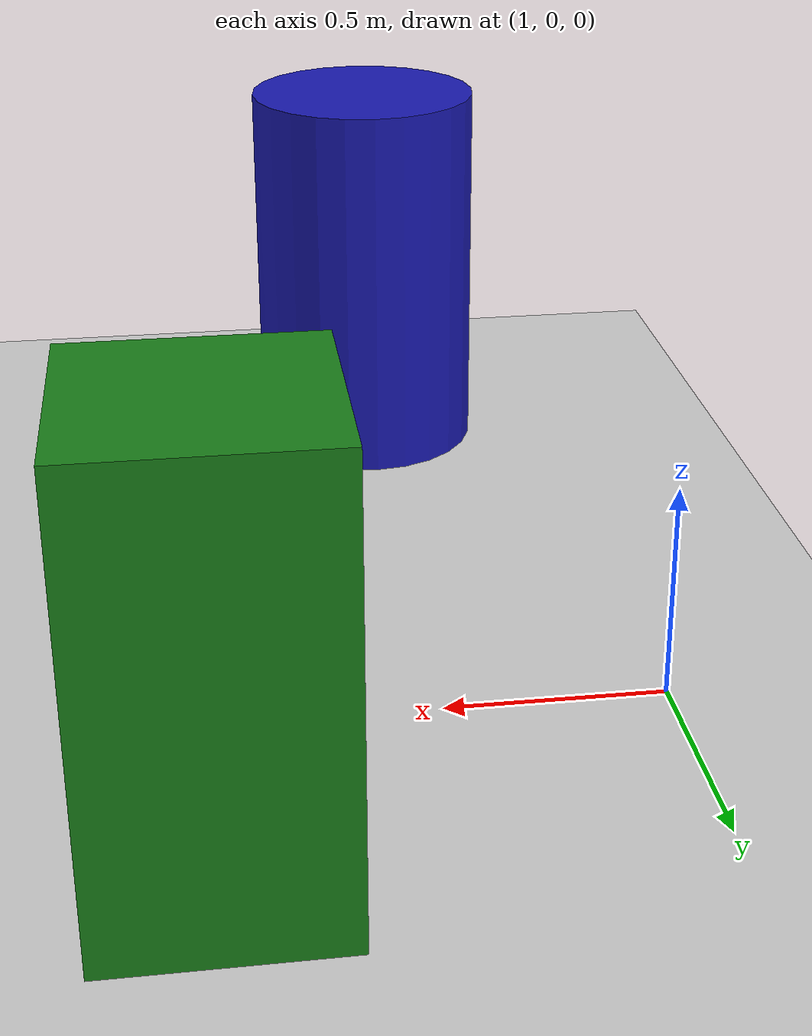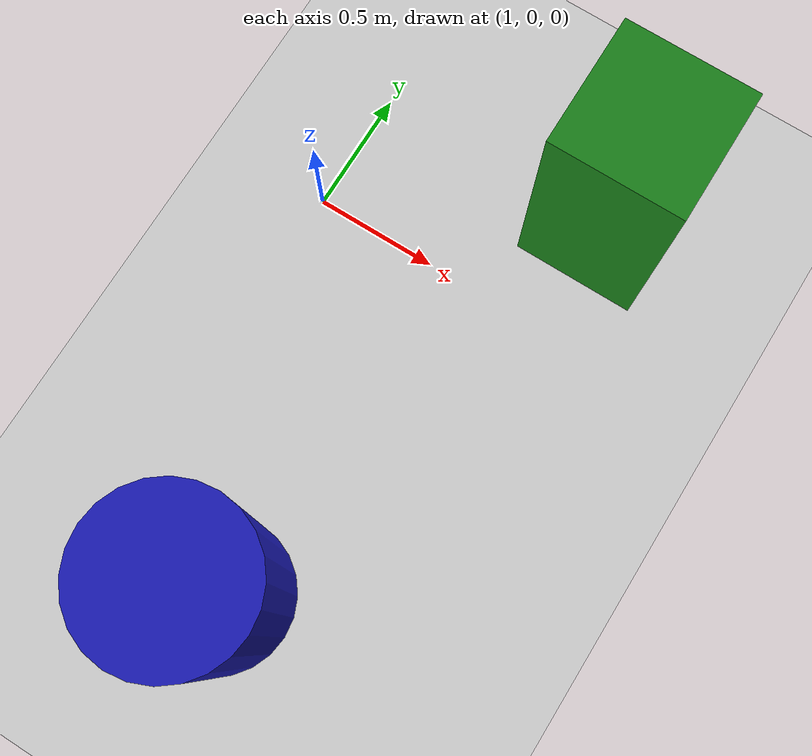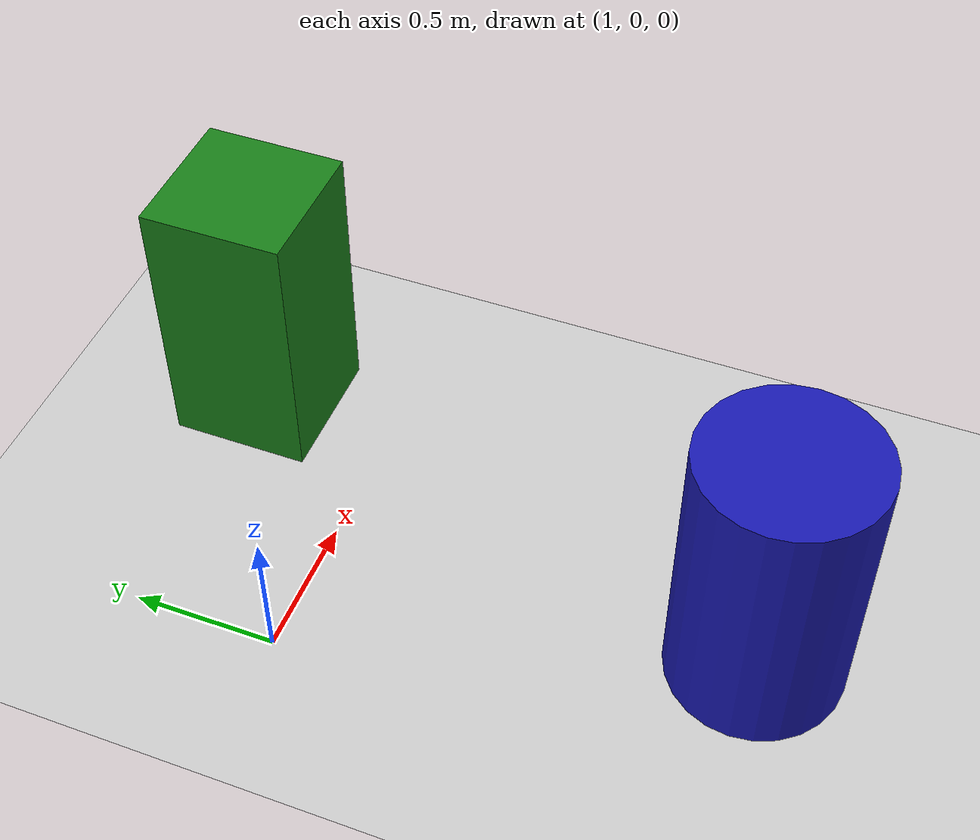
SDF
<?xml version="1.0" ?>
<sdf version="1.8">
  <world name="andino_world">
    <!-- Configuración del motor de física para simulación estable -->
    <physics name="4ms" type="ignored">
      <max_step_size>0.004</max_step_size>
      <real_time_factor>1.0</real_time_factor>
      <real_time_update_rate>250</real_time_update_rate>
    </physics>

    <!-- Plugins esenciales de Ignition para manejar escenas y física -->
    <plugin filename="libignition-gazebo-physics-system.so" name="ignition::gazebo::systems::Physics" />
    <plugin filename="libignition-gazebo-user-commands-system.so" name="ignition::gazebo::systems::UserCommands" />
    <plugin filename="libignition-gazebo-scene-broadcaster-system.so" name="ignition::gazebo::systems::SceneBroadcaster" />

    <!-- Sol y Luz ambiental (Mínimo consumo gráfico) -->
    <light type="directional" name="sun">
      <cast_shadows>false</cast_shadows> <!-- Desactivar sombras ahorra mucha CPU/GPU -->
      <pose>0 0 10 0 0 0</pose>
      <diffuse>0.8 0.8 0.8 1</diffuse>
      <specular>0.2 0.2 0.2 1</specular>
      <attenuation>
        <range>1000</range>
        <constant>0.9</constant>
        <linear>0.01</linear>
        <quadratic>0.001</quadratic>
      </attenuation>
      <direction>-0.5 0.1 -0.9</direction>
    </light>

    <!-- Suelo simple (Grid horizontal) -->
    <model name="ground_plane">
      <static>true</static>
      <link name="link">
        <collision name="collision">
          <geometry>
            <plane>
              <normal>0 0 10</normal>
              <size>100 100</size>
            </plane>
          </geometry>
        </collision>
        <visual name="visual">
          <geometry>
            <plane>
              <normal>0 0 1</normal>
              <size>100 100</size>
            </plane>
          </geometry>
          <material>
            <ambient>0.8 0.8 0.8 1</ambient>
            <diffuse>0.8 0.8 0.8 1</diffuse>
            <specular>0.8 0.8 0.8 1</specular>
          </material>
        </visual>
      </link>
    </model>

    <!-- Obstáculo Tipo Caja 1 (Para probar el SLAM y el Lidar) -->
    <model name="box_obstacle_1">
      <pose>2.0 0.5 0.5 0 0 0</pose>
      <link name="box_link">
        <collision name="collision">
          <geometry><box><size>0.5 0.5 1.0</size></box></geometry>
        </collision>
        <visual name="visual">
          <geometry><box><size>0.5 0.5 1.0</size></box></geometry>
          <material>
            <ambient>0.1 0.5 0.1 1</ambient>
            <diffuse>0.1 0.5 0.1 1</diffuse>
          </material>
        </visual>
      </link>
    </model>

    <!-- Obstáculo Tipo Cilindro 2 -->
    <model name="cylinder_obstacle_2">
      <pose>1.5 -1.5 0.5 0 0 0</pose>
      <link name="cylinder_link">
        <collision name="collision">
          <geometry><cylinder><radius>0.3</radius><length>1.0</length></cylinder></geometry>
        </collision>
        <visual name="visual">
          <geometry><cylinder><radius>0.3</radius><length>1.0</length></cylinder></geometry>
          <material>
            <ambient>0.1 0.1 0.7 1</ambient>
            <diffuse>0.1 0.1 0.7 1</diffuse>
          </material>
        </visual>
      </link>
    </model>

  </world>
</sdf>
